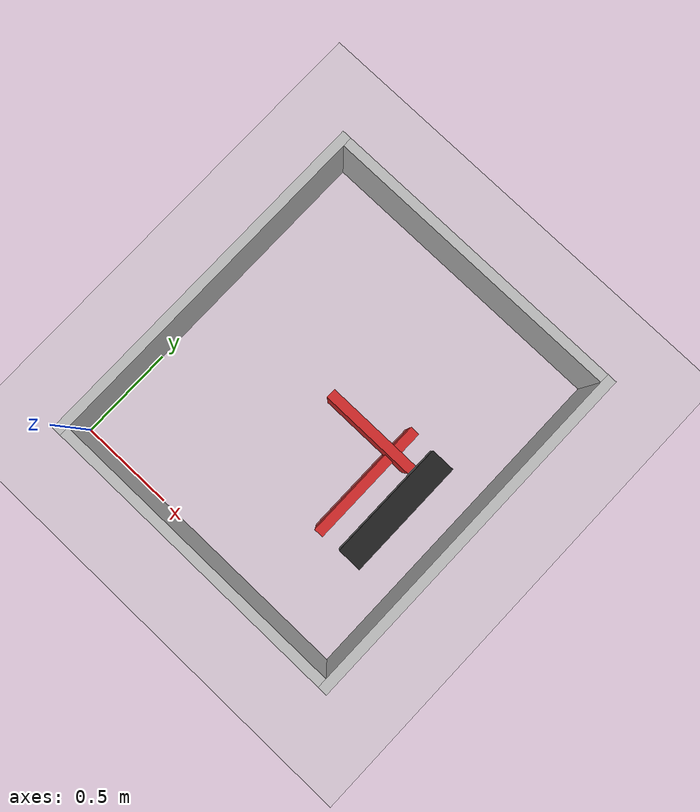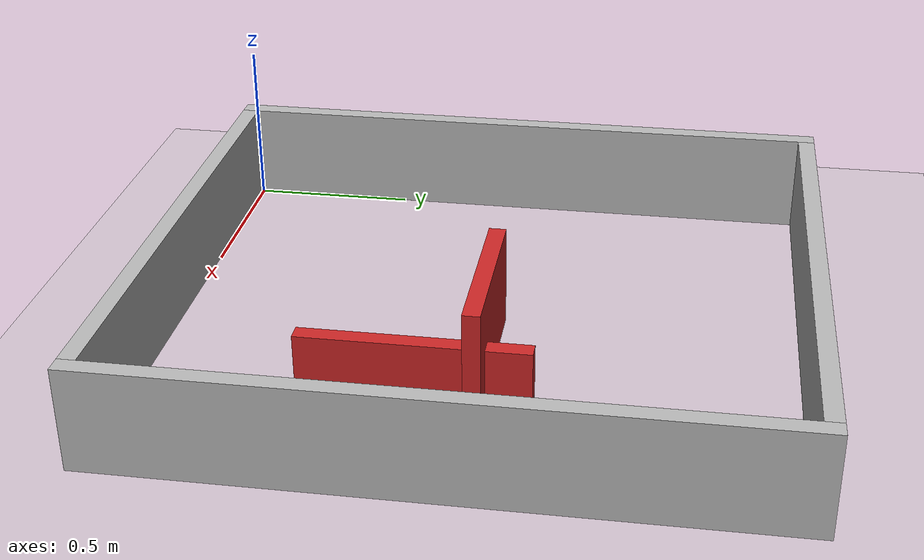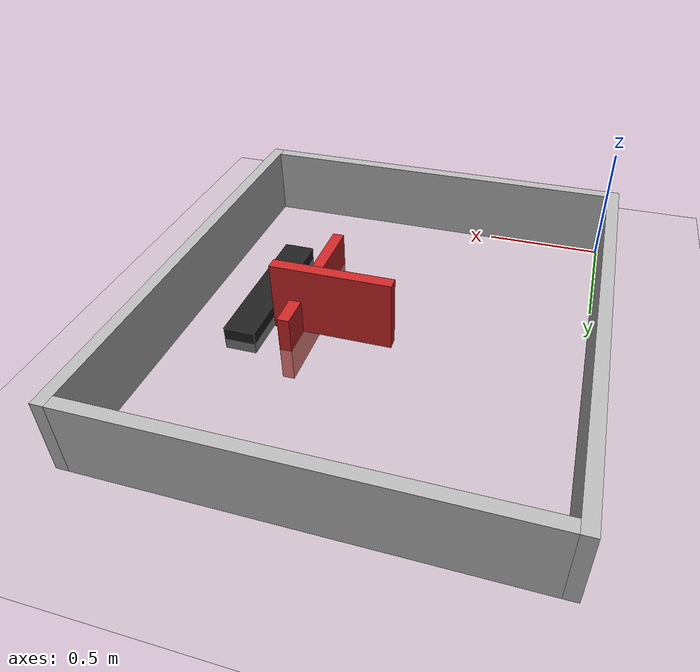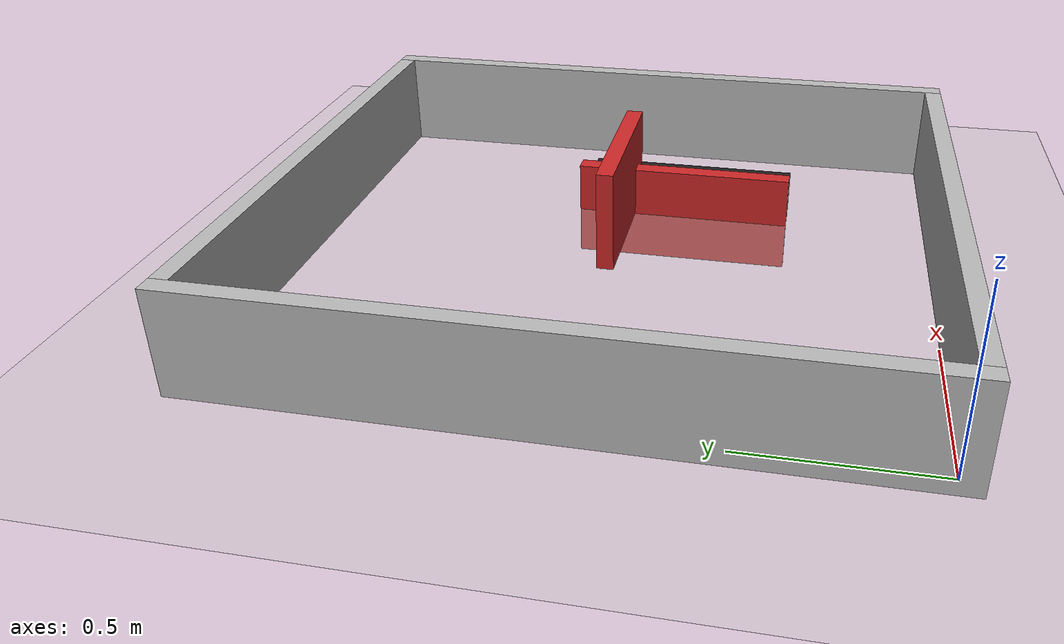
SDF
<?xml version="1.0"?>

<sdf version="1.5">
  <world name="default">

    <!-- A global light source -->
    <include>
      <uri>model://sun</uri>
    </include>

    <!-- A ground plane -->
    <include>
      <uri>model://ground_plane</uri>
    </include>

    <!-- Walls -->
    <include>
      <uri>model://wall_y</uri>
      <pose>0.8 -0.025 0.15 0 0 0</pose>
    </include>
    <include>
      <uri>model://wall_y</uri>
      <pose>0.8 1.825 0.15 0 0 0</pose>
    </include>
    <include>
      <uri>model://wall_x</uri>
      <pose>-0.025 0.90 0.15 0 0 1.5708</pose>
    </include>
    <include>
      <uri>model://wall_x</uri>
      <pose>1.625 0.90 0.15 0 0 1.5708</pose>
    </include>

    <!-- Conveyor belt -->
    <include>
      <uri>model://conveyor_belt</uri>
      <pose>1.35 0.75 0 0 0 0</pose>
    </include>
    <!-- Wall in front of conveyor belt -->
    <include>
      <uri>model://wall_conveyor</uri>
      <pose>1.15 0.75 0 0 0 0</pose>
    </include>

    <!-- Obstacle -->
    <include>
      <uri>model://obstacle</uri>
      <pose>1 0.9250 0.15 0 0 0</pose>
    </include>

    <physics type="ode">
      <real_time_update_rate>1000.0</real_time_update_rate>
      <max_step_size>0.001</max_step_size>
      <real_time_factor>1</real_time_factor>
      <ode>
        <solver>
          <type>quick</type>
          <iters>150</iters>
          <precon_iters>0</precon_iters>
          <sor>1.400000</sor>
          <use_dynamic_moi_rescaling>1</use_dynamic_moi_rescaling>
        </solver>
        <constraints>
          <cfm>0.00001</cfm>
          <erp>0.2</erp>
          <contact_max_correcting_vel>2000.000000</contact_max_correcting_vel>
          <contact_surface_layer>0.01000</contact_surface_layer>
        </constraints>
      </ode>
    </physics>

    <gui fullscreen='0'>
      <camera name='user_camera'>
        <pose>0.9 0.8 4 0 1.5708 0</pose>
      </camera>
    </gui>

    <scene>
      <shadows>false</shadows>
    </scene>

  </world>
</sdf>

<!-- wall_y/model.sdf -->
<sdf version="1.5">
    <model name="wall_y">
        <static>true</static>
        <link name="link">
            <collision name="collision">
                <geometry>
                    <box>
                        <size>1.6 0.05 0.3</size>
                    </box>
                </geometry>
            </collision>
            <visual name="visual">
                <cast_shadows>true</cast_shadows>
                <geometry>
                <box>
                    <size>1.6 0.05 0.3</size>
                </box>
                </geometry>
            </visual>
        </link>
    </model>
</sdf>

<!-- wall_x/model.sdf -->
<sdf version="1.5">
    <model name="wall_x">
        <static>true</static>
        <link name="link">
            <collision name="collision">
                <geometry>
                    <box>
                        <size>1.0 0.05 0.3</size>
                    </box>
                </geometry>
            </collision>
            <visual name="visual">
                <cast_shadows>true</cast_shadows>
                <geometry>
                <box>
                    <size>1.9 0.05 0.3</size>
                </box>
                </geometry>
            </visual>
        </link>
    </model>
</sdf>

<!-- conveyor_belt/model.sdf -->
<sdf version="1.5">
    <model name="conveyor_belt">
        <static>true</static>
        <link name="link">
            <collision name="collision">
                <geometry>
                    <box>
                        <size>0.133 0.66 0.1</size>
                    </box>
                </geometry>
            </collision>
            <visual name="visual">
                <cast_shadows>true</cast_shadows>
                <geometry>
                    <box>
                        <size>0.133 0.66 0.1</size>
                    </box>
                </geometry>
                <material>
                    <script>
                        <uri>file://media/materials/scripts/gazebo.material</uri>
                        <name>Gazebo/Black</name>
                    </script>
                </material>
            </visual>
        </link>
    </model>
</sdf>

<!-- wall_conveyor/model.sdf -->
<sdf version="1.5">
    <model name="wall_conveyor">
        <static>true</static>
        <link name="link">
            <collision name="collision">
                <geometry>
                    <box>
                        <size>0.05 0.66 0.30</size>
                    </box>
                </geometry>
            </collision>
            <visual name="visual">
                <cast_shadows>true</cast_shadows>
                <geometry>
                    <box>
                        <size>0.05 0.66 0.30</size>
                    </box>
                </geometry>
                <material>
                    <script>
                        <uri>file://media/materials/scripts/gazebo.material</uri>
                        <name>Gazebo/Red</name>
                    </script>
                </material>
            </visual>
        </link>
    </model>
</sdf>

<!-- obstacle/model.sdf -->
<sdf version="1.5">
    <model name="obstacle">
        <static>true</static>
        <link name="link">
            <collision name="collision">
                <geometry>
                    <box>
                        <size>0.5 0.05 0.3</size>
                    </box>
                </geometry>
            </collision>
            <visual name="visual">
                <cast_shadows>true</cast_shadows>
                <geometry>
                    <box>
                        <size>0.5 0.05 0.3</size>
                    </box>
                </geometry>
                <material>
                    <script>
                        <uri>file://media/materials/scripts/gazebo.material</uri>
                        <name>Gazebo/Red</name>
                    </script>
                </material>
            </visual>
        </link>
    </model>
</sdf>
